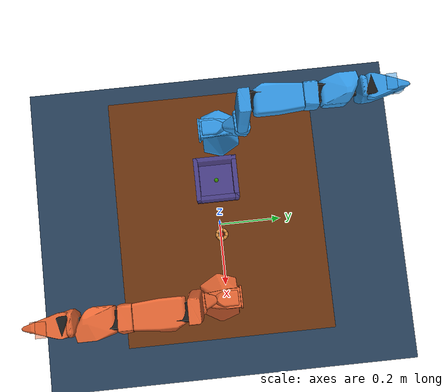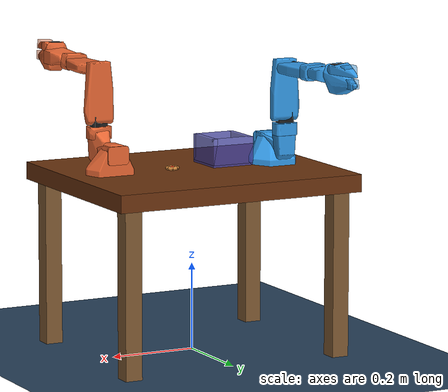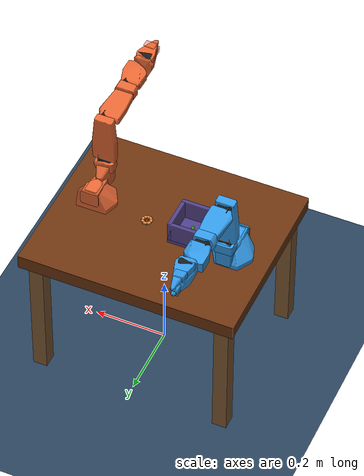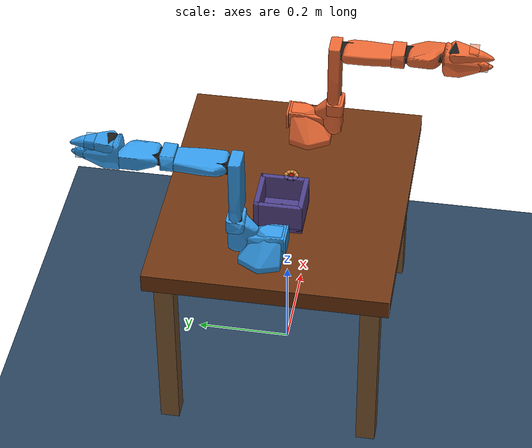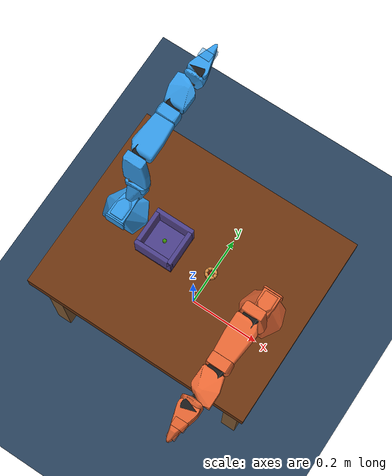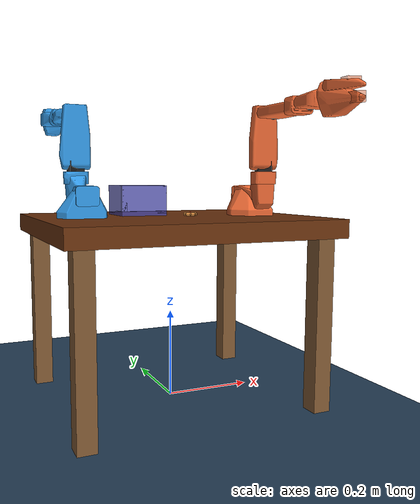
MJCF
<mujoco model="bi_so101_donut_packing">
  <compiler angle="radian" meshdir="so101" autolimits="true"/>
  <option timestep="0.002" gravity="0 0 -9.81"/>

  <default>
    <default class="sts3215">
      <geom contype="0" conaffinity="0"/>
      <joint damping="0.60" frictionloss="0.052" armature="0.028"/>
      <position kp="998.22" kv="2.731" forcerange="-2.94 2.94"/>
    </default>
    <default class="so101_visual">
      <geom type="mesh" contype="0" conaffinity="0" group="2"/>
    </default>
    <default class="so101_collision">
      <geom group="3"/>
    </default>
  </default>

  <visual>
    <headlight diffuse="0.6 0.6 0.6" ambient="0.3 0.3 0.3" specular="0 0 0"/>
    <rgba haze="0.15 0.25 0.35 1"/>
    <global azimuth="180" elevation="-30"/>
  </visual>

  <asset>
    <texture type="skybox" builtin="gradient" rgb1="0.3 0.5 0.7" rgb2="0 0 0" width="512" height="3072"/>
    <texture type="2d" name="groundplane" builtin="checker" mark="edge" rgb1="0.2 0.3 0.4" rgb2="0.1 0.2 0.3" markrgb="0.8 0.8 0.8" width="300" height="300"/>
    <texture type="2d" name="wood_tex" builtin="flat" rgb1="0.6 0.4 0.2" rgb2="0.55 0.35 0.15" width="100" height="100"/>
    <material name="groundplane" texture="groundplane" texuniform="true" texrepeat="5 5" reflectance="0.2"/>
    <material name="wood" texture="wood_tex" texuniform="true" rgba="0.7 0.5 0.3 1"/>
    <material name="donut_material" rgba="0.85 0.55 0.25 1"/>
    <material name="box_material" rgba="0.3 0.3 0.7 0.8"/>

    <!-- SO-101 meshes (shared by both arms) -->
    <mesh file="waveshare_mounting_plate_so101_v2.stl"/>
    <mesh file="sts3215_03a_v1.stl"/>
    <mesh file="motor_holder_so101_base_v1.stl"/>
    <mesh file="wrist_roll_follower_so101_v1.stl"/>
    <mesh file="moving_jaw_so101_v1.stl"/>
    <mesh file="base_motor_holder_so101_v1.stl"/>
    <mesh file="upper_arm_so101_v1.stl"/>
    <mesh file="wrist_roll_pitch_so101_v2.stl"/>
    <mesh file="under_arm_so101_v1.stl"/>
    <mesh file="rotation_pitch_so101_v1.stl"/>
    <mesh file="motor_holder_so101_wrist_v1.stl"/>
    <mesh file="sts3215_03a_no_horn_v1.stl"/>
    <mesh file="base_so101_v2.stl"/>

    <!-- Arm materials -->
    <material name="arm_body_left" rgba="0.2 0.6 0.9 1"/>
    <material name="arm_motor" rgba="0.1 0.1 0.1 1"/>
    <material name="arm_body_right" rgba="0.9 0.4 0.2 1"/>
  </asset>

  <worldbody>
    <light pos="0 0 1.5" dir="0 0 -1" directional="true"/>
    <light pos="0.5 0.5 1.0" dir="-0.5 -0.5 -1" diffuse="0.3 0.3 0.3"/>
    <geom name="floor" size="0 0 0.05" pos="0 0 0" type="plane" material="groundplane"/>

    <!-- Table -->
    <body name="table" pos="0 0 0.4">
      <geom name="table_top" type="box" size="0.3 0.25 0.02" pos="0 0 0" material="wood" mass="10"/>
      <geom name="table_leg1" type="box" size="0.02 0.02 0.2" pos="-0.26 -0.21 -0.2" rgba="0.5 0.35 0.2 1"/>
      <geom name="table_leg2" type="box" size="0.02 0.02 0.2" pos="0.26 -0.21 -0.2" rgba="0.5 0.35 0.2 1"/>
      <geom name="table_leg3" type="box" size="0.02 0.02 0.2" pos="-0.26 0.21 -0.2" rgba="0.5 0.35 0.2 1"/>
      <geom name="table_leg4" type="box" size="0.02 0.02 0.2" pos="0.26 0.21 -0.2" rgba="0.5 0.35 0.2 1"/>
    </body>

    <!-- Donut (torus approximation - 8 capsules in a ring, R=0.012m, r=0.004m, outer diameter 32mm) -->
    <body name="donut" pos="0.05 0.0 0.424">
      <freejoint name="donut_joint"/>
      <geom name="donut_0" type="capsule" size="0.004" fromto="0.01109 -0.00459 0 0.01109 0.00459 0"
            material="donut_material" mass="0.00625" contype="1" conaffinity="1" condim="4" friction="0.8 0.02 0.01"/>
      <geom name="donut_1" type="capsule" size="0.004" fromto="0.01109 0.00459 0 0.00459 0.01109 0"
            material="donut_material" mass="0.00625" contype="1" conaffinity="1" condim="4" friction="0.8 0.02 0.01"/>
      <geom name="donut_2" type="capsule" size="0.004" fromto="0.00459 0.01109 0 -0.00459 0.01109 0"
            material="donut_material" mass="0.00625" contype="1" conaffinity="1" condim="4" friction="0.8 0.02 0.01"/>
      <geom name="donut_3" type="capsule" size="0.004" fromto="-0.00459 0.01109 0 -0.01109 0.00459 0"
            material="donut_material" mass="0.00625" contype="1" conaffinity="1" condim="4" friction="0.8 0.02 0.01"/>
      <geom name="donut_4" type="capsule" size="0.004" fromto="-0.01109 0.00459 0 -0.01109 -0.00459 0"
            material="donut_material" mass="0.00625" contype="1" conaffinity="1" condim="4" friction="0.8 0.02 0.01"/>
      <geom name="donut_5" type="capsule" size="0.004" fromto="-0.01109 -0.00459 0 -0.00459 -0.01109 0"
            material="donut_material" mass="0.00625" contype="1" conaffinity="1" condim="4" friction="0.8 0.02 0.01"/>
      <geom name="donut_6" type="capsule" size="0.004" fromto="-0.00459 -0.01109 0 0.00459 -0.01109 0"
            material="donut_material" mass="0.00625" contype="1" conaffinity="1" condim="4" friction="0.8 0.02 0.01"/>
      <geom name="donut_7" type="capsule" size="0.004" fromto="0.00459 -0.01109 0 0.01109 -0.00459 0"
            material="donut_material" mass="0.00625" contype="1" conaffinity="1" condim="4" friction="0.8 0.02 0.01"/>
      <site name="donut_site" size="0.005" rgba="1 0 0 0.5"/>
    </body>

    <!-- Box (open-top container on the left side) -->
    <body name="box" pos="-0.08 0.0 0.43">
      <freejoint name="box_joint"/>
      <geom name="box_bottom" type="box" size="0.05 0.05 0.005" pos="0 0 0" material="box_material" mass="0.2"
            contype="1" conaffinity="1"/>
      <geom name="box_wall1" type="box" size="0.05 0.005 0.03" pos="0 0.045 0.03" material="box_material"
            contype="1" conaffinity="1"/>
      <geom name="box_wall2" type="box" size="0.05 0.005 0.03" pos="0 -0.045 0.03" material="box_material"
            contype="1" conaffinity="1"/>
      <geom name="box_wall3" type="box" size="0.005 0.05 0.03" pos="0.045 0 0.03" material="box_material"
            contype="1" conaffinity="1"/>
      <geom name="box_wall4" type="box" size="0.005 0.05 0.03" pos="-0.045 0 0.03" material="box_material"
            contype="1" conaffinity="1"/>
      <site name="box_center" size="0.005" pos="0 0 0.02" rgba="0 1 0 0.5"/>
      <site name="box_grasp_site" size="0.005" pos="0 0.045 0.055" rgba="0 0 1 0.5"/>
    </body>

    <!-- ==================== LEFT ARM ==================== -->
    <!-- Positioned on the left side of the table, facing right -->
    <body name="left_base" pos="-0.20 0.0 0.42" quat="0.707107 0 0 0.707107">
      <inertial pos="0.0137179 -5.19711e-05 0.0334843" mass="0.147" fullinertia="0.000114686 0.000136117 0.000130364 -4.59787e-07 4.97151e-06 9.75275e-08"/>
      <geom type="mesh" class="so101_visual" pos="-0.00636471 -9.94414e-05 -0.0024" quat="0.5 0.5 0.5 0.5" mesh="base_motor_holder_so101_v1" material="arm_body_left"/>
      <geom type="mesh" class="so101_visual" pos="-0.00636471 -8.97657e-09 -0.0024" quat="0.5 0.5 0.5 0.5" mesh="base_so101_v2" material="arm_body_left"/>
      <geom type="mesh" class="so101_visual" pos="0.0263353 -8.97657e-09 0.0437" quat="1 0 0 0" mesh="sts3215_03a_v1" material="arm_motor"/>
      <geom type="mesh" class="so101_visual" pos="-0.0309827 -0.000199441 0.0474" quat="0.5 0.5 0.5 0.5" mesh="waveshare_mounting_plate_so101_v2" material="arm_body_left"/>
      <body name="left_shoulder" pos="0.0388353 -8.97657e-09 0.0624" quat="0 0 -1 0">
        <joint axis="0 0 1" name="left_shoulder_pan" type="hinge" range="-1.92 1.92" class="sts3215"/>
        <inertial pos="-0.0307604 -1.66727e-05 -0.0252713" mass="0.100006" fullinertia="8.3759e-05 8.10403e-05 2.39783e-05 7.55525e-08 -1.16342e-06 1.54663e-07"/>
        <geom type="mesh" class="so101_visual" pos="-0.0303992 0.000422241 -0.0417" quat="0.5 0.5 0.5 -0.5" mesh="sts3215_03a_v1" material="arm_motor"/>
        <geom type="mesh" class="so101_collision" pos="-0.0303992 0.000422241 -0.0417" quat="0.5 0.5 0.5 -0.5" mesh="sts3215_03a_v1"/>
        <geom type="mesh" class="so101_visual" pos="-0.0675992 -0.000177759 0.0158499" quat="0.5 0.5 -0.5 0.5" mesh="motor_holder_so101_base_v1" material="arm_body_left"/>
        <geom type="mesh" class="so101_collision" pos="-0.0675992 -0.000177759 0.0158499" quat="0.5 0.5 -0.5 0.5" mesh="motor_holder_so101_base_v1"/>
        <geom type="mesh" class="so101_visual" pos="0.0122008 2.22413e-05 0.0464" quat="0.707107 -0.707107 0 0" mesh="rotation_pitch_so101_v1" material="arm_body_left"/>
        <geom type="mesh" class="so101_collision" pos="0.0122008 2.22413e-05 0.0464" quat="0.707107 -0.707107 0 0" mesh="rotation_pitch_so101_v1"/>
        <body name="left_upper_arm" pos="-0.0303992 -0.0182778 -0.0542" quat="0.5 -0.5 -0.5 -0.5">
          <joint axis="0 0 1" name="left_shoulder_lift" type="hinge" range="-1.745 1.745" class="sts3215"/>
          <inertial pos="-0.0898471 -0.00838224 0.0184089" mass="0.103" fullinertia="4.08002e-05 0.000147318 0.000142487 -1.97819e-05 -4.03016e-08 8.97326e-09"/>
          <geom type="mesh" class="so101_visual" pos="-0.11257 -0.0155 0.0187" quat="0 -0.707107 0.707107 0" mesh="sts3215_03a_v1" material="arm_motor"/>
          <geom type="mesh" class="so101_collision" pos="-0.11257 -0.0155 0.0187" quat="0 -0.707107 0.707107 0" mesh="sts3215_03a_v1"/>
          <geom type="mesh" class="so101_visual" pos="-0.065085 0.012 0.0182" quat="0 1 0 0" mesh="upper_arm_so101_v1" material="arm_body_left"/>
          <geom type="mesh" class="so101_collision" pos="-0.065085 0.012 0.0182" quat="0 1 0 0" mesh="upper_arm_so101_v1"/>
          <body name="left_lower_arm" pos="-0.11257 -0.028 0" quat="0.707107 0 0 0.707107">
            <joint axis="0 0 1" name="left_elbow_flex" type="hinge" range="-1.69 1.69" class="sts3215"/>
            <inertial pos="-0.0980701 0.00324376 0.0182831" mass="0.104" fullinertia="2.87438e-05 0.000159844 0.00014529 7.41152e-06 1.26409e-06 -4.90188e-08"/>
            <geom type="mesh" class="so101_visual" pos="-0.0648499 -0.032 0.0182" quat="0 1 0 0" mesh="under_arm_so101_v1" material="arm_body_left"/>
            <geom type="mesh" class="so101_collision" pos="-0.0648499 -0.032 0.0182" quat="0 1 0 0" mesh="under_arm_so101_v1"/>
            <geom type="mesh" class="so101_visual" pos="-0.0648499 -0.032 0.018" quat="0 -1 0 0" mesh="motor_holder_so101_wrist_v1" material="arm_body_left"/>
            <geom type="mesh" class="so101_collision" pos="-0.0648499 -0.032 0.018" quat="0 -1 0 0" mesh="motor_holder_so101_wrist_v1"/>
            <geom type="mesh" class="so101_visual" pos="-0.1224 0.0052 0.0187" quat="0 0 1 0" mesh="sts3215_03a_v1" material="arm_motor"/>
            <geom type="mesh" class="so101_collision" pos="-0.1224 0.0052 0.0187" quat="0 0 1 0" mesh="sts3215_03a_v1"/>
            <body name="left_wrist" pos="-0.1349 0.0052 0" quat="0.707107 0 0 -0.707107">
              <joint axis="0 0 1" name="left_wrist_flex" type="hinge" range="-1.658 1.658" class="sts3215"/>
              <inertial pos="-0.000103312 -0.0386143 0.0281156" mass="0.079" fullinertia="3.68263e-05 2.5391e-05 2.1e-05 1.7893e-08 -5.28128e-08 3.6412e-06"/>
              <geom type="mesh" class="so101_visual" pos="0 -0.0424 0.0306" quat="0.5 0.5 0.5 -0.5" mesh="sts3215_03a_no_horn_v1" material="arm_motor"/>
              <geom type="mesh" class="so101_collision" pos="0 -0.0424 0.0306" quat="0.5 0.5 0.5 -0.5" mesh="sts3215_03a_no_horn_v1"/>
              <geom type="mesh" class="so101_visual" pos="0 -0.028 0.0181" quat="0.5 -0.5 -0.5 -0.5" mesh="wrist_roll_pitch_so101_v2" material="arm_body_left"/>
              <geom type="mesh" class="so101_collision" pos="0 -0.028 0.0181" quat="0.5 -0.5 -0.5 -0.5" mesh="wrist_roll_pitch_so101_v2"/>
              <body name="left_gripper_body" pos="0 -0.0611 0.0181" quat="0.0172091 -0.0172091 0.706897 0.706897">
                <joint axis="0 0 1" name="left_wrist_roll" type="hinge" range="-2.744 2.841" class="sts3215"/>
                <inertial pos="0.000213627 0.000245138 -0.025187" mass="0.087" fullinertia="2.75087e-05 4.33657e-05 3.45059e-05 -3.35241e-07 -5.7352e-06 -5.17847e-08"/>
                <geom type="mesh" class="so101_visual" pos="0.0077 0.0001 -0.0234" quat="0.707107 -0.707107 0 0" mesh="sts3215_03a_v1" material="arm_motor"/>
                <geom type="mesh" class="so101_collision" pos="0.0077 0.0001 -0.0234" quat="0.707107 -0.707107 0 0" mesh="sts3215_03a_v1"/>
                <geom type="mesh" class="so101_visual" pos="0 -0.000218214 0.000949706" quat="0 1 0 0" mesh="wrist_roll_follower_so101_v1" material="arm_body_left"/>
                <geom type="mesh" class="so101_collision" pos="0 -0.000218214 0.000949706" quat="0 1 0 0" mesh="wrist_roll_follower_so101_v1"/>
                <site group="3" name="left_gripperframe" pos="-0.0079 -0.000218121 -0.0981274" quat="0.707107 0 0.707107 0"/>
                <site group="3" name="left_grasp_center" pos="0.006 0.002 -0.072" rgba="0 0 0 0"/>
                <camera name="left_wrist_camera" pos="-0.008 0.03 -0.05" quat="0.707107 0 0.707107 0" fovy="80"/>
                <!-- Left gripper fingertip collision for grasping -->
                <geom name="left_fingertip" type="box" size="0.01 0.01 0.015" pos="-0.008 0 -0.08"
                      contype="1" conaffinity="1" condim="4" friction="1.0 0.02 0.01" rgba="0.2 0.6 0.9 0.5" mass="0.01"/>
                <body name="left_moving_jaw" pos="0.0202 0.0188 -0.0234" quat="0.707107 0.707107 0 0">
                  <joint axis="0 0 1" name="left_gripper" type="hinge" range="-0.175 1.745" class="sts3215"/>
                  <inertial pos="-0.00157495 -0.0300244 0.0192755" mass="0.012" fullinertia="6.61427e-06 1.89032e-06 5.28738e-06 -3.19807e-07 -5.90717e-09 -1.09945e-07"/>
                  <geom type="mesh" class="so101_visual" pos="0 0 0.0189" quat="1 0 0 0" mesh="moving_jaw_so101_v1" material="arm_body_left"/>
                  <geom type="mesh" class="so101_collision" pos="0 0 0.0189" quat="1 0 0 0" mesh="moving_jaw_so101_v1"/>
                  <geom name="left_jaw_tip" type="box" size="0.01 0.01 0.015" pos="0 -0.04 0.015"
                        contype="1" conaffinity="1" condim="4" friction="1.0 0.02 0.01" rgba="0.2 0.6 0.9 0.5" mass="0.01"/>
                </body>
              </body>
            </body>
          </body>
        </body>
      </body>
    </body>

    <!-- ==================== RIGHT ARM ==================== -->
    <!-- Positioned on the right side of the table, facing left -->
    <body name="right_base" pos="0.20 0.0 0.42" quat="0.707107 0 0 -0.707107">
      <inertial pos="0.0137179 -5.19711e-05 0.0334843" mass="0.147" fullinertia="0.000114686 0.000136117 0.000130364 -4.59787e-07 4.97151e-06 9.75275e-08"/>
      <geom type="mesh" class="so101_visual" pos="-0.00636471 -9.94414e-05 -0.0024" quat="0.5 0.5 0.5 0.5" mesh="base_motor_holder_so101_v1" material="arm_body_right"/>
      <geom type="mesh" class="so101_visual" pos="-0.00636471 -8.97657e-09 -0.0024" quat="0.5 0.5 0.5 0.5" mesh="base_so101_v2" material="arm_body_right"/>
      <geom type="mesh" class="so101_visual" pos="0.0263353 -8.97657e-09 0.0437" quat="1 0 0 0" mesh="sts3215_03a_v1" material="arm_motor"/>
      <geom type="mesh" class="so101_visual" pos="-0.0309827 -0.000199441 0.0474" quat="0.5 0.5 0.5 0.5" mesh="waveshare_mounting_plate_so101_v2" material="arm_body_right"/>
      <body name="right_shoulder" pos="0.0388353 -8.97657e-09 0.0624" quat="0 0 -1 0">
        <joint axis="0 0 1" name="right_shoulder_pan" type="hinge" range="-1.92 1.92" class="sts3215"/>
        <inertial pos="-0.0307604 -1.66727e-05 -0.0252713" mass="0.100006" fullinertia="8.3759e-05 8.10403e-05 2.39783e-05 7.55525e-08 -1.16342e-06 1.54663e-07"/>
        <geom type="mesh" class="so101_visual" pos="-0.0303992 0.000422241 -0.0417" quat="0.5 0.5 0.5 -0.5" mesh="sts3215_03a_v1" material="arm_motor"/>
        <geom type="mesh" class="so101_collision" pos="-0.0303992 0.000422241 -0.0417" quat="0.5 0.5 0.5 -0.5" mesh="sts3215_03a_v1"/>
        <geom type="mesh" class="so101_visual" pos="-0.0675992 -0.000177759 0.0158499" quat="0.5 0.5 -0.5 0.5" mesh="motor_holder_so101_base_v1" material="arm_body_right"/>
        <geom type="mesh" class="so101_collision" pos="-0.0675992 -0.000177759 0.0158499" quat="0.5 0.5 -0.5 0.5" mesh="motor_holder_so101_base_v1"/>
        <geom type="mesh" class="so101_visual" pos="0.0122008 2.22413e-05 0.0464" quat="0.707107 -0.707107 0 0" mesh="rotation_pitch_so101_v1" material="arm_body_right"/>
        <geom type="mesh" class="so101_collision" pos="0.0122008 2.22413e-05 0.0464" quat="0.707107 -0.707107 0 0" mesh="rotation_pitch_so101_v1"/>
        <body name="right_upper_arm" pos="-0.0303992 -0.0182778 -0.0542" quat="0.5 -0.5 -0.5 -0.5">
          <joint axis="0 0 1" name="right_shoulder_lift" type="hinge" range="-1.745 1.745" class="sts3215"/>
          <inertial pos="-0.0898471 -0.00838224 0.0184089" mass="0.103" fullinertia="4.08002e-05 0.000147318 0.000142487 -1.97819e-05 -4.03016e-08 8.97326e-09"/>
          <geom type="mesh" class="so101_visual" pos="-0.11257 -0.0155 0.0187" quat="0 -0.707107 0.707107 0" mesh="sts3215_03a_v1" material="arm_motor"/>
          <geom type="mesh" class="so101_collision" pos="-0.11257 -0.0155 0.0187" quat="0 -0.707107 0.707107 0" mesh="sts3215_03a_v1"/>
          <geom type="mesh" class="so101_visual" pos="-0.065085 0.012 0.0182" quat="0 1 0 0" mesh="upper_arm_so101_v1" material="arm_body_right"/>
          <geom type="mesh" class="so101_collision" pos="-0.065085 0.012 0.0182" quat="0 1 0 0" mesh="upper_arm_so101_v1"/>
          <body name="right_lower_arm" pos="-0.11257 -0.028 0" quat="0.707107 0 0 0.707107">
            <joint axis="0 0 1" name="right_elbow_flex" type="hinge" range="-1.69 1.69" class="sts3215"/>
            <inertial pos="-0.0980701 0.00324376 0.0182831" mass="0.104" fullinertia="2.87438e-05 0.000159844 0.00014529 7.41152e-06 1.26409e-06 -4.90188e-08"/>
            <geom type="mesh" class="so101_visual" pos="-0.0648499 -0.032 0.0182" quat="0 1 0 0" mesh="under_arm_so101_v1" material="arm_body_right"/>
            <geom type="mesh" class="so101_collision" pos="-0.0648499 -0.032 0.0182" quat="0 1 0 0" mesh="under_arm_so101_v1"/>
            <geom type="mesh" class="so101_visual" pos="-0.0648499 -0.032 0.018" quat="0 -1 0 0" mesh="motor_holder_so101_wrist_v1" material="arm_body_right"/>
            <geom type="mesh" class="so101_collision" pos="-0.0648499 -0.032 0.018" quat="0 -1 0 0" mesh="motor_holder_so101_wrist_v1"/>
            <geom type="mesh" class="so101_visual" pos="-0.1224 0.0052 0.0187" quat="0 0 1 0" mesh="sts3215_03a_v1" material="arm_motor"/>
            <geom type="mesh" class="so101_collision" pos="-0.1224 0.0052 0.0187" quat="0 0 1 0" mesh="sts3215_03a_v1"/>
            <body name="right_wrist" pos="-0.1349 0.0052 0" quat="0.707107 0 0 -0.707107">
              <joint axis="0 0 1" name="right_wrist_flex" type="hinge" range="-1.658 1.658" class="sts3215"/>
              <inertial pos="-0.000103312 -0.0386143 0.0281156" mass="0.079" fullinertia="3.68263e-05 2.5391e-05 2.1e-05 1.7893e-08 -5.28128e-08 3.6412e-06"/>
              <geom type="mesh" class="so101_visual" pos="0 -0.0424 0.0306" quat="0.5 0.5 0.5 -0.5" mesh="sts3215_03a_no_horn_v1" material="arm_motor"/>
              <geom type="mesh" class="so101_collision" pos="0 -0.0424 0.0306" quat="0.5 0.5 0.5 -0.5" mesh="sts3215_03a_no_horn_v1"/>
              <geom type="mesh" class="so101_visual" pos="0 -0.028 0.0181" quat="0.5 -0.5 -0.5 -0.5" mesh="wrist_roll_pitch_so101_v2" material="arm_body_right"/>
              <geom type="mesh" class="so101_collision" pos="0 -0.028 0.0181" quat="0.5 -0.5 -0.5 -0.5" mesh="wrist_roll_pitch_so101_v2"/>
              <body name="right_gripper_body" pos="0 -0.0611 0.0181" quat="0.0172091 -0.0172091 0.706897 0.706897">
                <joint axis="0 0 1" name="right_wrist_roll" type="hinge" range="-2.744 2.841" class="sts3215"/>
                <inertial pos="0.000213627 0.000245138 -0.025187" mass="0.087" fullinertia="2.75087e-05 4.33657e-05 3.45059e-05 -3.35241e-07 -5.7352e-06 -5.17847e-08"/>
                <geom type="mesh" class="so101_visual" pos="0.0077 0.0001 -0.0234" quat="0.707107 -0.707107 0 0" mesh="sts3215_03a_v1" material="arm_motor"/>
                <geom type="mesh" class="so101_collision" pos="0.0077 0.0001 -0.0234" quat="0.707107 -0.707107 0 0" mesh="sts3215_03a_v1"/>
                <geom type="mesh" class="so101_visual" pos="0 -0.000218214 0.000949706" quat="0 1 0 0" mesh="wrist_roll_follower_so101_v1" material="arm_body_right"/>
                <geom type="mesh" class="so101_collision" pos="0 -0.000218214 0.000949706" quat="0 1 0 0" mesh="wrist_roll_follower_so101_v1"/>
                <site group="3" name="right_gripperframe" pos="-0.0079 -0.000218121 -0.0981274" quat="0.707107 0 0.707107 0"/>
                <site group="3" name="right_grasp_center" pos="0.006 0.002 -0.072" rgba="0 0 0 0"/>
                <camera name="right_wrist_camera" pos="-0.008 0.03 -0.05" quat="0.707107 0 0.707107 0" fovy="80"/>
                <geom name="right_fingertip" type="box" size="0.01 0.01 0.015" pos="-0.008 0 -0.08"
                      contype="1" conaffinity="1" condim="4" friction="1.0 0.02 0.01" rgba="0.9 0.4 0.2 0.5" mass="0.01"/>
                <body name="right_moving_jaw" pos="0.0202 0.0188 -0.0234" quat="0.707107 0.707107 0 0">
                  <joint axis="0 0 1" name="right_gripper" type="hinge" range="-0.175 1.745" class="sts3215"/>
                  <inertial pos="-0.00157495 -0.0300244 0.0192755" mass="0.012" fullinertia="6.61427e-06 1.89032e-06 5.28738e-06 -3.19807e-07 -5.90717e-09 -1.09945e-07"/>
                  <geom type="mesh" class="so101_visual" pos="0 0 0.0189" quat="1 0 0 0" mesh="moving_jaw_so101_v1" material="arm_body_right"/>
                  <geom type="mesh" class="so101_collision" pos="0 0 0.0189" quat="1 0 0 0" mesh="moving_jaw_so101_v1"/>
                  <geom name="right_jaw_tip" type="box" size="0.01 0.01 0.015" pos="0 -0.04 0.015"
                        contype="1" conaffinity="1" condim="4" friction="1.0 0.02 0.01" rgba="0.9 0.4 0.2 0.5" mass="0.01"/>
                </body>
              </body>
            </body>
          </body>
        </body>
      </body>
    </body>

    <!-- ==================== CAMERAS ==================== -->
    <camera name="top_camera" pos="0 -0.1 1.2" quat="1 0 0 0" fovy="60"/>
    <camera name="front_camera" pos="0 -0.6 0.7" xyaxes="1 0 0 0 0.5 1" fovy="50"/>
  </worldbody>

  <!-- ==================== ACTUATORS ==================== -->
  <actuator>
    <!-- Left arm actuators -->
    <position class="sts3215" name="left_shoulder_pan" joint="left_shoulder_pan" ctrlrange="-1.92 1.92"/>
    <position class="sts3215" name="left_shoulder_lift" joint="left_shoulder_lift" ctrlrange="-1.745 1.745"/>
    <position class="sts3215" name="left_elbow_flex" joint="left_elbow_flex" ctrlrange="-1.69 1.69"/>
    <position class="sts3215" name="left_wrist_flex" joint="left_wrist_flex" ctrlrange="-1.658 1.658"/>
    <position class="sts3215" name="left_wrist_roll" joint="left_wrist_roll" ctrlrange="-2.744 2.841"/>
    <position class="sts3215" name="left_gripper" joint="left_gripper" ctrlrange="-0.175 1.745"/>
    <!-- Right arm actuators -->
    <position class="sts3215" name="right_shoulder_pan" joint="right_shoulder_pan" ctrlrange="-1.92 1.92"/>
    <position class="sts3215" name="right_shoulder_lift" joint="right_shoulder_lift" ctrlrange="-1.745 1.745"/>
    <position class="sts3215" name="right_elbow_flex" joint="right_elbow_flex" ctrlrange="-1.69 1.69"/>
    <position class="sts3215" name="right_wrist_flex" joint="right_wrist_flex" ctrlrange="-1.658 1.658"/>
    <position class="sts3215" name="right_wrist_roll" joint="right_wrist_roll" ctrlrange="-2.744 2.841"/>
    <position class="sts3215" name="right_gripper" joint="right_gripper" ctrlrange="-0.175 1.745"/>
  </actuator>

  <equality>
    <weld name="left_grip_box" body1="left_gripper_body" body2="box" active="false"
          solref="0.001 1" solimp="0.999 0.9999 0.0001"/>
    <weld name="right_grip_donut" body1="right_gripper_body" body2="donut" active="false"
          solref="0.001 1" solimp="0.999 0.9999 0.0001"/>
  </equality>
</mujoco>
